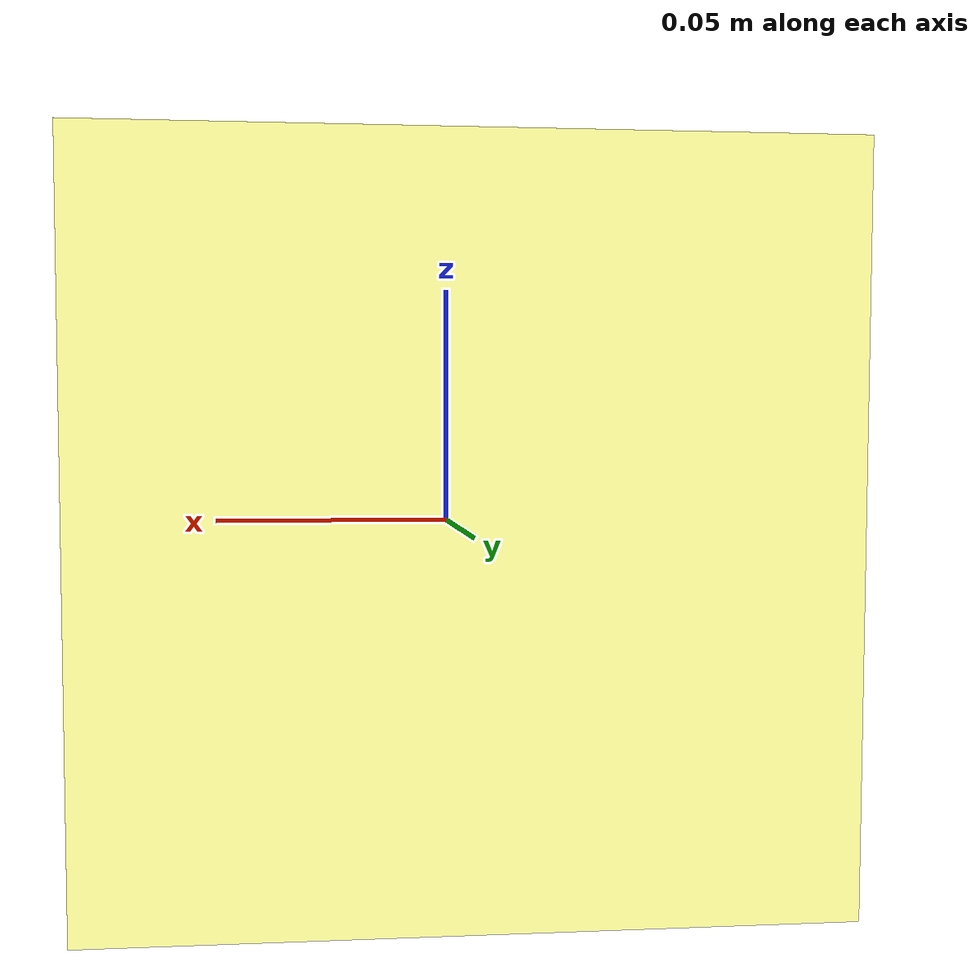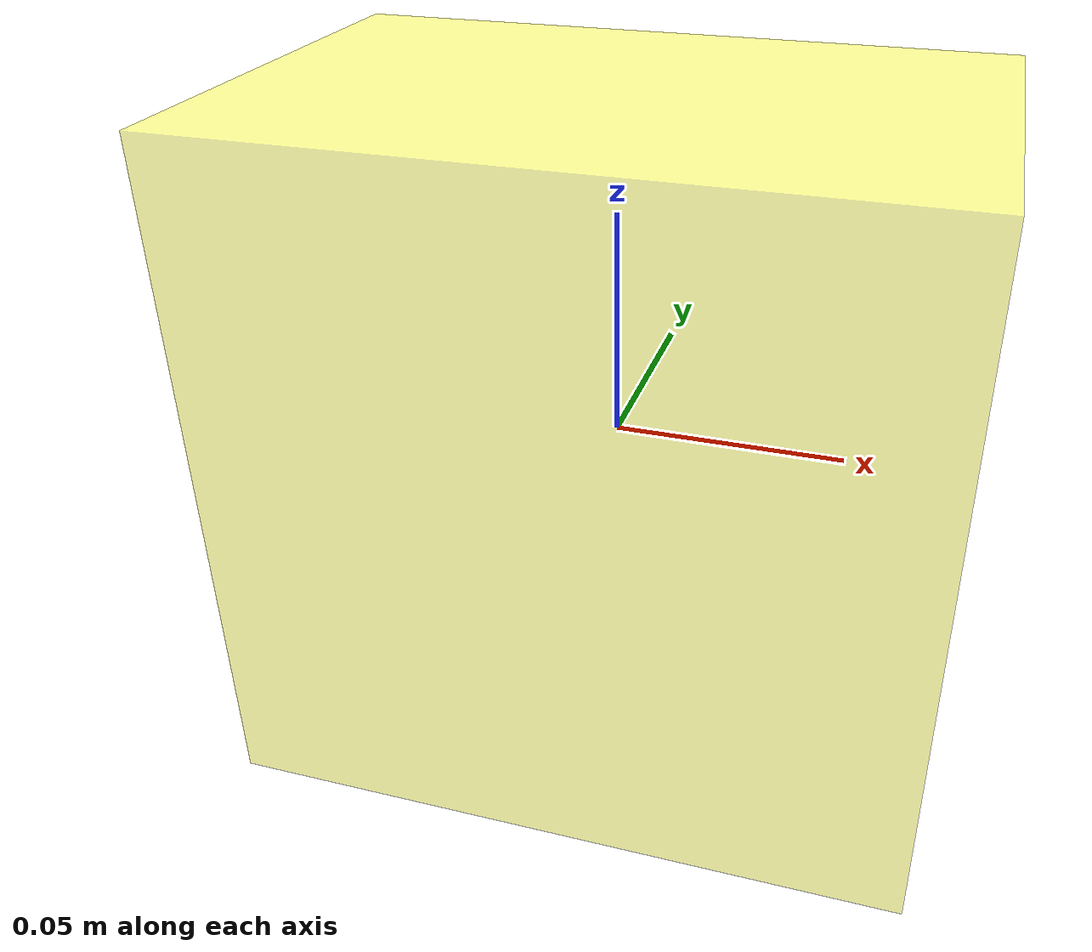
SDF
<?xml version="1.0" ?>
<sdf version="1.5">
  <model name="boxObstacle">
    <static>true</static>
    <link name="link">

        <collision name="boxObstacleCollision">
            <geometry>
                <box>
                    <size>0.15 0.10 0.15</size>
                </box>
            </geometry>
        </collision>
        <visual name="boxObstacleVisual">
            <geometry>
                  <box>
                        <size>0.15 0.10 0.15</size>
                  </box>
            </geometry>

            <material>
                    <ambient> 1.0 1.0 0.0 0.6 </ambient>
                    <diffuse> 1.0 1.0 0.0 0.6 </diffuse>
            </material>

            <transparency>0.6</transparency>

        </visual>

    </link>
    <plugin name="model_push" filename="model_push/libmodel_push.so"/>

  </model>
</sdf>
